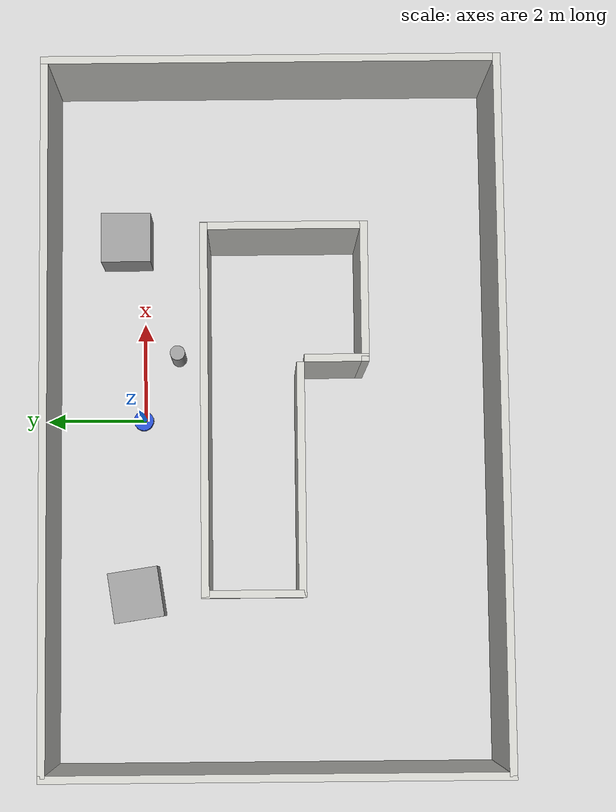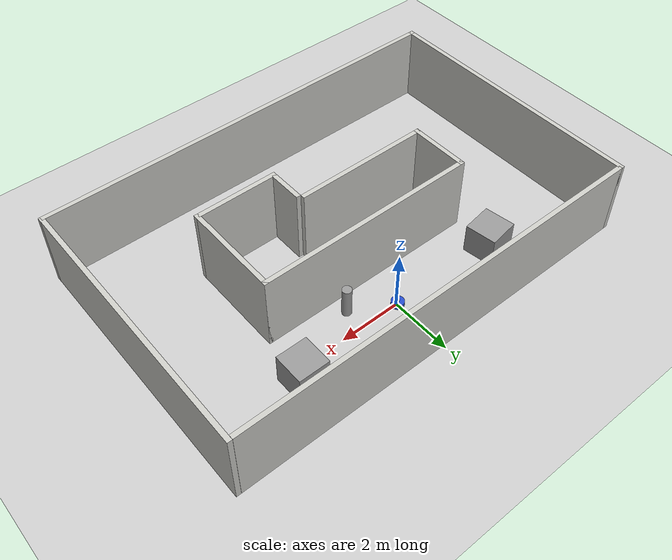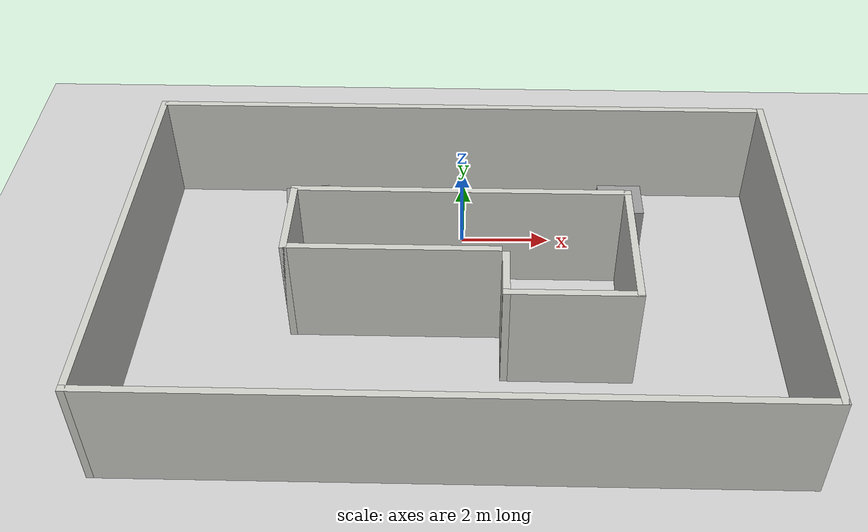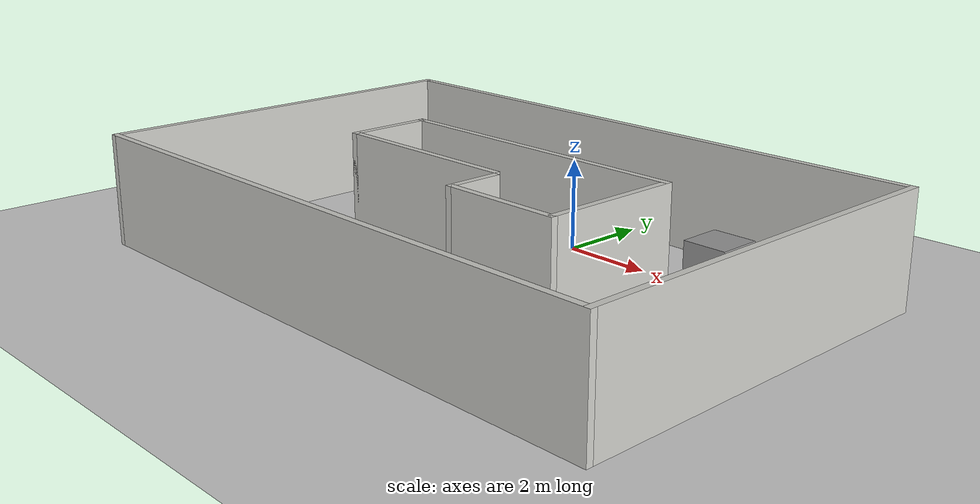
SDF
<sdf version="1.6">
 <world name="default">
  <light name="sun" type="directional">
   <pose>0 0 10 0 -0 0</pose>
   <diffuse>0.8 0.8 0.8 1</diffuse>
   <specular>0.2 0.2 0.2 1</specular>
   <attenuation>
    <range>1000</range>
    <constant>0.9</constant>
    <linear>0.01</linear>
    <quadratic>0.001</quadratic>
   </attenuation>
   <direction>-0.5 0.1 -0.9</direction>
  </light>
  <model name="ground_plane">
   <static>1</static>
   <link name="link">
    <collision name="collision">
     <geometry><plane><normal>0 0 1</normal><size>100 100</size></plane></geometry>
     <surface><friction><ode><mu>100</mu><mu2>50</mu2></ode></friction></surface>
    </collision>
    <visual name="visual">
     <cast_shadows>0</cast_shadows>
     <geometry><plane><normal>0 0 1</normal><size>100 100</size></plane></geometry>
     <material>
      <script><uri>file://media/materials/scripts/gazebo.material</uri><name>Gazebo/Grey</name></script>
     </material>
    </visual>
    <velocity_decay><linear>0</linear><angular>0</angular></velocity_decay>
   </link>
  </model>
  <physics name="default_physics" default="0" type="ode">
   <max_step_size>0.001</max_step_size>
   <real_time_factor>1</real_time_factor>
   <real_time_update_rate>1000</real_time_update_rate>
  </physics>
  <scene><ambient>0.4 0.4 0.4 1</ambient><background>0.7 0.7 0.7 1</background><shadows>1</shadows></scene>
  <spherical_coordinates>
   <surface_model>EARTH_WGS84</surface_model>
   <latitude_deg>0</latitude_deg>
   <longitude_deg>0</longitude_deg>
   <elevation>0</elevation>
   <heading_deg>0</heading_deg>
  </spherical_coordinates>
  <gravity>0 0 -9.8</gravity>
  <magnetic_field>6e-06 2.3e-05 -4.2e-05</magnetic_field>
  <atmosphere type="adiabatic"/>
  <model name="room_0">
   <pose>-0.064136 -2.60385 0 0 -0 0</pose>
   <link name="Wall_0">
    <collision name="Wall_0_Collision">
     <geometry><box><size>13.75 0.15 2.5</size></box></geometry>
     <pose>0 0 1.25 0 -0 0</pose>
    </collision>
    <visual name="Wall_0_Visual">
     <pose>0 0 1.25 0 -0 0</pose>
     <geometry><box><size>13.75 0.15 2.5</size></box></geometry>
     <material>
      <script><uri>file://media/materials/scripts/gazebo.material</uri><name>Gazebo/CeilingTiled</name></script>
      <ambient>1 1 1 1</ambient>
     </material>
    </visual>
    <pose>-0.027328 4.425 0 0 -0 0</pose>
   </link>
   <link name="Wall_12">
    <collision name="Wall_12_Collision">
     <geometry><box><size>2 0.15 2.5</size></box></geometry>
     <pose>0 0 1.25 0 -0 0</pose>
    </collision>
    <visual name="Wall_12_Visual">
     <pose>0 0 1.25 0 -0 0</pose>
     <geometry><box><size>2 0.15 2.5</size></box></geometry>
     <material>
      <script><uri>file://media/materials/scripts/gazebo.material</uri><name>Gazebo/CeilingTiled</name></script>
      <ambient>1 1 1 1</ambient>
     </material>
    </visual>
    <pose>-3.49908 0.404259 0 0 0 -1.5708</pose>
   </link>
   <link name="Wall_13">
    <collision name="Wall_13_Collision">
     <geometry><box><size>4.5 0.15 2.5</size></box></geometry>
     <pose>0 0 1.25 0 -0 0</pose>
    </collision>
    <visual name="Wall_13_Visual">
     <pose>0 0 1.25 0 -0 0</pose>
     <geometry><box><size>4.5 0.15 2.5</size></box></geometry>
     <material>
      <script><uri>file://media/materials/scripts/gazebo.material</uri><name>Gazebo/CeilingTiled</name></script>
      <ambient>1 1 1 1</ambient>
     </material>
    </visual>
    <pose>-1.32408 -0.520741 0 0 -0 0</pose>
   </link>
   <link name="Wall_2">
    <collision name="Wall_2_Collision">
     <geometry><box><size>9 0.15 2.5</size></box></geometry>
     <pose>0 0 1.25 0 -0 0</pose>
    </collision>
    <visual name="Wall_2_Visual">
     <pose>0 0 1.25 0 -0 0</pose>
     <geometry><box><size>9 0.15 2.5</size></box></geometry>
     <material>
      <script><uri>file://media/materials/scripts/gazebo.material</uri><name>Gazebo/CeilingTiled</name></script>
      <ambient>1 1 1 1</ambient>
     </material>
    </visual>
    <pose>6.925 0 0 0 0 -1.5708</pose>
   </link>
   <link name="Wall_3">
    <collision name="Wall_3_Collision">
     <geometry><box><size>14 0.15 2.5</size></box></geometry>
     <pose>0 0 1.25 0 -0 0</pose>
    </collision>
    <visual name="Wall_3_Visual">
     <pose>0 0 1.25 0 -0 0</pose>
     <geometry><box><size>14 0.15 2.5</size></box></geometry>
     <material>
      <script><uri>file://media/materials/scripts/gazebo.material</uri><name>Gazebo/CeilingTiled</name></script>
      <ambient>1 1 1 1</ambient>
     </material>
    </visual>
    <pose>0 -4.425 0 0 -0 3.14159</pose>
   </link>
   <link name="Wall_4">
    <collision name="Wall_4_Collision">
     <geometry><box><size>9 0.15 2.5</size></box></geometry>
     <pose>0 0 1.25 0 -0 0</pose>
    </collision>
    <visual name="Wall_4_Visual">
     <pose>0 0 1.25 0 -0 0</pose>
     <geometry><box><size>9 0.15 2.5</size></box></geometry>
     <material>
      <script><uri>file://media/materials/scripts/gazebo.material</uri><name>Gazebo/CeilingTiled</name></script>
      <ambient>1 1 1 1</ambient>
     </material>
    </visual>
    <pose>-6.925 0 0 0 -0 1.5708</pose>
   </link>
   <link name="Wall_6">
    <collision name="Wall_6_Collision">
     <geometry><box><size>7.25 0.15 2.5</size></box></geometry>
     <pose>0 0 1.25 0 -0 0</pose>
    </collision>
    <visual name="Wall_6_Visual">
     <pose>0 0 1.25 0 -0 0</pose>
     <geometry><box><size>7.25 0.15 2.5</size></box></geometry>
     <material>
      <script><uri>file://media/materials/scripts/gazebo.material</uri><name>Gazebo/CeilingTiled</name></script>
      <ambient>1 1 1 1</ambient>
     </material>
    </visual>
    <pose>0.050923 1.32926 0 0 -0 0</pose>
   </link>
   <link name="Wall_7">
    <collision name="Wall_7_Collision">
     <geometry><box><size>3.25 0.15 2.5</size></box></geometry>
     <pose>0 0 1.25 0 -0 0</pose>
    </collision>
    <visual name="Wall_7_Visual">
     <pose>0 0 1.25 0 -0 0</pose>
     <geometry><box><size>3.25 0.15 2.5</size></box></geometry>
     <material>
      <script><uri>file://media/materials/scripts/gazebo.material</uri><name>Gazebo/CeilingTiled</name></script>
      <ambient>1 1 1 1</ambient>
     </material>
    </visual>
    <pose>3.60092 -0.220741 0 0 0 -1.5708</pose>
   </link>
   <link name="Wall_8">
    <collision name="Wall_8_Collision">
     <geometry><box><size>2.75 0.15 2.5</size></box></geometry>
     <pose>0 0 1.25 0 -0 0</pose>
    </collision>
    <visual name="Wall_8_Visual">
     <pose>0 0 1.25 0 -0 0</pose>
     <geometry><box><size>2.75 0.15 2.5</size></box></geometry>
     <material>
      <script><uri>file://media/materials/scripts/gazebo.material</uri><name>Gazebo/CeilingTiled</name></script>
      <ambient>1 1 1 1</ambient>
     </material>
    </visual>
    <pose>2.30092 -1.77074 0 0 -0 3.14159</pose>
   </link>
   <link name="Wall_9">
    <collision name="Wall_9_Collision">
     <geometry><box><size>1.25 0.15 2.5</size></box></geometry>
     <pose>0 0 1.25 0 -0 0</pose>
    </collision>
    <visual name="Wall_9_Visual">
     <pose>0 0 1.25 0 -0 0</pose>
     <geometry><box><size>1.25 0.15 2.5</size></box></geometry>
     <material>
      <script><uri>file://media/materials/scripts/gazebo.material</uri><name>Gazebo/CeilingTiled</name></script>
      <ambient>1 1 1 1</ambient>
     </material>
    </visual>
    <pose>1.00092 -1.22074 0 0 -0 1.5708</pose>
   </link>
   <static>1</static>
  </model>
  <model name="mbot">
   <link name="base_footprint">
    <inertial>
     <pose>0 0 0.110522 0 -0 0</pose>
     <mass>20.1</mass>
     <inertia><ixx>0.253764</ixx><ixy>0</ixy><ixz>0</ixz><iyy>0.253764</iyy><iyz>0</iyz><izz>0.41</izz></inertia>
    </inertial>
    <collision name="base_footprint_fixed_joint_lump__base_link_collision">
     <pose>0 0 0.11 0 -0 0</pose>
     <geometry><cylinder><length>0.16</length><radius>0.2</radius></cylinder></geometry>
    </collision>
    <collision name="base_footprint_fixed_joint_lump__laser_link_collision_1">
     <pose>0 0 0.215 0 -0 0</pose>
     <geometry><cylinder><length>0.06</length><radius>0.05</radius></cylinder></geometry>
    </collision>
    <visual name="base_footprint_visual">
     <geometry><box><size>0.001 0.001 0.001</size></box></geometry>
     <material><script><uri>__default__</uri><name>__default__</name></script></material>
    </visual>
    <visual name="base_footprint_fixed_joint_lump__base_link_visual_1">
     <pose>0 0 0.11 0 -0 0</pose>
     <geometry><cylinder><length>0.16</length><radius>0.2</radius></cylinder></geometry>
     <material>
      <script><name>Gazebo/Blue</name><uri>file://media/materials/scripts/gazebo.material</uri></script>
     </material>
    </visual>
    <visual name="base_footprint_fixed_joint_lump__laser_link_visual_2">
     <pose>0 0 0.215 0 -0 0</pose>
     <geometry><cylinder><length>0.05</length><radius>0.05</radius></cylinder></geometry>
     <material>
      <script><name>Gazebo/Black</name><uri>file://media/materials/scripts/gazebo.material</uri></script>
     </material>
    </visual>
    <sensor name="rplidar" type="ray">
     <visualize>0</visualize>
     <update_rate>10</update_rate>
     <ray>
      <scan>
       <horizontal>
        <samples>360</samples>
        <resolution>1</resolution>
        <min_angle>-3.1415</min_angle>
        <max_angle>3.1416</max_angle>
       </horizontal>
       <vertical><samples>1</samples><min_angle>0</min_angle><max_angle>0</max_angle></vertical>
      </scan>
      <range><min>0.1</min><max>6</max><resolution>0.01</resolution></range>
      <noise><type>gaussian</type><mean>0</mean><stddev>0.01</stddev></noise>
     </ray>
     <plugin name="gazebo_rplidar" filename="libgazebo_ros_laser.so">
      <topicName>/scan</topicName>
      <frameName>laser_link</frameName>
      <robotNamespace>/</robotNamespace>
     </plugin>
     <pose>0 0 0.215 0 -0 0</pose>
    </sensor>
   </link>
   <link name="back_caster_link">
    <pose>0.18 0 0.015 0 -0 0</pose>
    <inertial>
     <mass>0.5</mass>
     <inertia><ixx>4.5e-05</ixx><ixy>0</ixy><ixz>0</ixz><iyy>4.5e-05</iyy><iyz>0</iyz><izz>4.5e-05</izz></inertia>
    </inertial>
    <collision name="back_caster_link_collision">
     <geometry><sphere><radius>0.015</radius></sphere></geometry>
    </collision>
    <visual name="back_caster_link_visual">
     <geometry><sphere><radius>0.015</radius></sphere></geometry>
     <material>
      <script><name>Gazebo/Black</name><uri>file://media/materials/scripts/gazebo.material</uri></script>
     </material>
    </visual>
   </link>
   <joint name="back_caster_joint" type="revolute">
    <child>back_caster_link</child>
    <parent>base_footprint</parent>
    <axis>
     <xyz>0 1 0</xyz>
     <limit><lower>-1e+16</lower><upper>1e+16</upper></limit>
     <dynamics><spring_reference>0</spring_reference><spring_stiffness>0</spring_stiffness></dynamics>
     <use_parent_model_frame>1</use_parent_model_frame>
    </axis>
   </joint>
   <link name="front_caster_link">
    <pose>-0.18 0 0.015 0 -0 0</pose>
    <inertial>
     <mass>0.5</mass>
     <inertia><ixx>4.5e-05</ixx><ixy>0</ixy><ixz>0</ixz><iyy>4.5e-05</iyy><iyz>0</iyz><izz>4.5e-05</izz></inertia>
    </inertial>
    <collision name="front_caster_link_collision">
     <geometry><sphere><radius>0.015</radius></sphere></geometry>
    </collision>
    <visual name="front_caster_link_visual">
     <geometry><sphere><radius>0.015</radius></sphere></geometry>
     <material>
      <script><name>Gazebo/Black</name><uri>file://media/materials/scripts/gazebo.material</uri></script>
     </material>
    </visual>
   </link>
   <joint name="front_caster_joint" type="revolute">
    <child>front_caster_link</child>
    <parent>base_footprint</parent>
    <axis>
     <xyz>0 1 0</xyz>
     <limit><lower>-1e+16</lower><upper>1e+16</upper></limit>
     <dynamics><spring_reference>0</spring_reference><spring_stiffness>0</spring_stiffness></dynamics>
     <use_parent_model_frame>1</use_parent_model_frame>
    </axis>
   </joint>
   <link name="left_wheel_link">
    <pose>0 -0.19 0.06 0 -0 0</pose>
    <inertial>
     <mass>2</mass>
     <inertia>
      <ixx>0.00190417</ixx>
      <ixy>0</ixy>
      <ixz>0</ixz>
      <iyy>0.00190417</iyy>
      <iyz>0</iyz>
      <izz>0.0036</izz>
     </inertia>
    </inertial>
    <collision name="left_wheel_link_collision">
     <pose>0 0 0 1.5708 -0 0</pose>
     <geometry><cylinder><length>0.025</length><radius>0.06</radius></cylinder></geometry>
    </collision>
    <visual name="left_wheel_link_visual">
     <pose>0 0 0 1.5708 -0 0</pose>
     <geometry><cylinder><length>0.025</length><radius>0.06</radius></cylinder></geometry>
     <material>
      <script><name>Gazebo/Gray</name><uri>file://media/materials/scripts/gazebo.material</uri></script>
     </material>
    </visual>
   </link>
   <joint name="left_wheel_joint" type="revolute">
    <child>left_wheel_link</child>
    <parent>base_footprint</parent>
    <axis>
     <xyz>0 1 0</xyz>
     <limit><lower>-1e+16</lower><upper>1e+16</upper></limit>
     <dynamics><spring_reference>0</spring_reference><spring_stiffness>0</spring_stiffness></dynamics>
     <use_parent_model_frame>1</use_parent_model_frame>
    </axis>
   </joint>
   <link name="right_wheel_link">
    <pose>0 0.19 0.06 0 -0 0</pose>
    <inertial>
     <mass>2</mass>
     <inertia>
      <ixx>0.00190417</ixx>
      <ixy>0</ixy>
      <ixz>0</ixz>
      <iyy>0.00190417</iyy>
      <iyz>0</iyz>
      <izz>0.0036</izz>
     </inertia>
    </inertial>
    <collision name="right_wheel_link_collision">
     <pose>0 0 0 1.5708 -0 0</pose>
     <geometry><cylinder><length>0.025</length><radius>0.06</radius></cylinder></geometry>
    </collision>
    <visual name="right_wheel_link_visual">
     <pose>0 0 0 1.5708 -0 0</pose>
     <geometry><cylinder><length>0.025</length><radius>0.06</radius></cylinder></geometry>
     <material>
      <script><name>Gazebo/Gray</name><uri>file://media/materials/scripts/gazebo.material</uri></script>
     </material>
    </visual>
   </link>
   <joint name="right_wheel_joint" type="revolute">
    <child>right_wheel_link</child>
    <parent>base_footprint</parent>
    <axis>
     <xyz>0 1 0</xyz>
     <limit><lower>-1e+16</lower><upper>1e+16</upper></limit>
     <dynamics><spring_reference>0</spring_reference><spring_stiffness>0</spring_stiffness></dynamics>
     <use_parent_model_frame>1</use_parent_model_frame>
    </axis>
   </joint>
   <static>0</static>
   <plugin name="differential_drive_controller" filename="libgazebo_ros_diff_drive.so">
    <rosDebugLevel>Debug</rosDebugLevel>
    <publishWheelTF>true</publishWheelTF>
    <robotNamespace>/</robotNamespace>
    <publishTf>1</publishTf>
    <publishWheelJointState>true</publishWheelJointState>
    <alwaysOn>true</alwaysOn>
    <updateRate>50.0</updateRate>
    <legacyMode>true</legacyMode>
    <leftJoint>left_wheel_joint</leftJoint>
    <rightJoint>right_wheel_joint</rightJoint>
    <wheelSeparation>0.38</wheelSeparation>
    <wheelDiameter>0.12</wheelDiameter>
    <broadcastTF>1</broadcastTF>
    <wheelTorque>30</wheelTorque>
    <wheelAcceleration>1.8</wheelAcceleration>
    <commandTopic>cmd_vel</commandTopic>
    <odometryFrame>odom</odometryFrame>
    <odometryTopic>odom</odometryTopic>
    <robotBaseFrame>base_footprint</robotBaseFrame>
   </plugin>
   <pose>-0.003588 0.040863 0 1e-06 0 -0.001098</pose>
  </model>
  <model name="unit_box_0">
   <pose>-3.55143 0.151619 0.5 0 -0 0.148613</pose>
   <link name="link">
    <inertial>
     <mass>1</mass>
     <inertia>
      <ixx>0.166667</ixx>
      <ixy>0</ixy>
      <ixz>0</ixz>
      <iyy>0.166667</iyy>
      <iyz>0</iyz>
      <izz>0.166667</izz>
     </inertia>
    </inertial>
    <collision name="collision"><geometry><box><size>1 1 1</size></box></geometry></collision>
    <visual name="visual">
     <geometry><box><size>1 1 1</size></box></geometry>
     <material>
      <script><name>Gazebo/Grey</name><uri>file://media/materials/scripts/gazebo.material</uri></script>
     </material>
    </visual>
   </link>
  </model>
  <model name="unit_cylinder_0">
   <pose>1.27623 -0.691036 0.499991 0 -0 5e-06</pose>
   <link name="link">
    <inertial>
     <mass>1</mass>
     <inertia><ixx>0.145833</ixx><ixy>0</ixy><ixz>0</ixz><iyy>0.145833</iyy><iyz>0</iyz><izz>0.125</izz></inertia>
    </inertial>
    <collision name="collision">
     <geometry><cylinder><radius>0.149157</radius><length>1</length></cylinder></geometry>
    </collision>
    <visual name="visual">
     <geometry><cylinder><radius>0.149157</radius><length>1</length></cylinder></geometry>
     <material>
      <script><name>Gazebo/Grey</name><uri>file://media/materials/scripts/gazebo.material</uri></script>
     </material>
    </visual>
   </link>
  </model>
  <model name="unit_box_1_0">
   <pose>3.64721 0.346884 0.499995 -1e-05 0 0</pose>
   <link name="link">
    <inertial>
     <mass>1</mass>
     <inertia>
      <ixx>0.166667</ixx>
      <ixy>0</ixy>
      <ixz>0</ixz>
      <iyy>0.166667</iyy>
      <iyz>0</iyz>
      <izz>0.166667</izz>
     </inertia>
    </inertial>
    <collision name="collision"><geometry><box><size>1 1 1</size></box></geometry></collision>
    <visual name="visual">
     <geometry><box><size>1 1 1</size></box></geometry>
     <material>
      <script><name>Gazebo/Grey</name><uri>file://media/materials/scripts/gazebo.material</uri></script>
     </material>
    </visual>
   </link>
  </model>
 </world>
</sdf>
